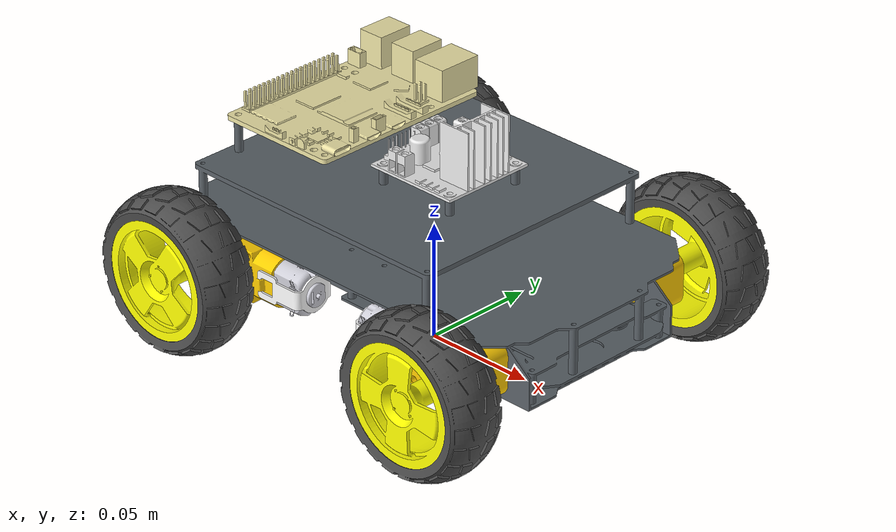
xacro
<?xml version="1.0" ?>

<robot name="carpet_rover" xmlns:xacro="http://www.ros.org/wiki/xacro">

    <xacro:include filename="xacro_properties/xacro_properties.xacro" />
    <xacro:include filename="modules/carpet_rover.xacro" />
    <xacro:include filename="gazebo_tags/gazebo_plugins.xacro" />
    <xacro:include filename="gazebo_tags/gazebo_properties.xacro" />

</robot>

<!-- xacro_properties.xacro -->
<robot xmlns:xacro="http://www.ros.org/wiki/xacro">

  <xacro:property name="package_name" value="carpet_rover_description" />
  <xacro:property name="robot_name" value="carpet_rover" />

</robot>

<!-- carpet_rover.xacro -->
<!-- Generated using onshape-to-robot -->
<!-- Onshape document_id - 37ed7333b50d007c975d9fec -->

<robot xmlns:xacro="http://www.ros.org/wiki/xacro">

  <!-- Link for the world (standard practice for Gazebo only if you have a robot which is FIXED to the ground) -->

  <!-- Use this instead when doing mobile robots!-->
  <link name="base_footprint"/>

  <joint name="base_joint" type="fixed">
      <parent link="base_footprint" />
      <child link="chassis_link" />
      <origin xyz="0 0 0.0275" rpy="0 0 0" />
  </joint>

  <!-- Link chassis_link -->
  <link name="chassis_link">
    <inertial>
      <origin xyz="-0.00393243 0.000523012 0.0166997" rpy="0 0 0"/>
      <mass value="0.519517"/>
      <inertia ixx="0.00106248" ixy="1.05589e-05" ixz="7.56655e-05" iyy="0.00124425" iyz="-1.38092e-05" izz="0.00187327"/>
    </inertial>
    <!--Added in a simple mesh for collision for entire chassis assembly-->
    <collision>
      <origin xyz="0 0 0" rpy="0 0 0"/>
      <geometry>
        <mesh filename="package://${package_name}/assets/chassis_collision.stl"/>
      </geometry>
    </collision>
    <!-- Part raspi5 -->
    <visual>
      <origin xyz="-0.0455 -2.77556e-17 0.058" rpy="0 -0 1.5708"/>
      <geometry>
        <mesh filename="package://${package_name}/assets/raspi5.stl"/>
      </geometry>
      <material name="raspi5_material">
        <color rgba="0.921569 0.882353 0.643137 1"/>
      </material>
    </visual>
    <!-- Part robotchassis -->
    <visual>
      <origin xyz="0 1.26293e-18 0" rpy="0 -0 3.14159"/>
      <geometry>
        <mesh filename="package://${package_name}/assets/robotchassis.stl"/>
      </geometry>
      <material name="robotchassis_material">
        <color rgba="0.34902 0.376471 0.4 1"/>
      </material>
    </visual>
    <!-- Part l298n -->
    <visual>
      <origin xyz="0.0296 0.0215 0.05125" rpy="1.5708 -5.77779e-34 3.14159"/>
      <geometry>
        <mesh filename="package://${package_name}/assets/l298n.stl"/>
      </geometry>
      <material name="l298n_material">
        <color rgba="0.917647 0.917647 0.917647 1"/>
      </material>
    </visual>
    <!-- Part dcmotor_motor -->
    <visual>
      <origin xyz="0.00712895 0.0243036 0.0183344" rpy="1.13798e-15 1.5708 0"/>
      <geometry>
        <mesh filename="package://${package_name}/assets/dcmotor_motor.stl"/>
      </geometry>
      <material name="dcmotor_motor_material">
        <color rgba="0.803922 0.803922 0.839216 1"/>
      </material>
    </visual>
    <!-- Part dcmotor_belt -->
    <visual>
      <origin xyz="0.00843232 0.0243036 0.0183344" rpy="1.26648e-15 1.5708 0"/>
      <geometry>
        <mesh filename="package://${package_name}/assets/dcmotor_belt.stl"/>
      </geometry>
      <material name="dcmotor_belt_material">
        <color rgba="1 1 1 1"/>
      </material>
    </visual>
    <!-- Part dcmotor_body -->
    <visual>
      <origin xyz="0.00828145 0.0243036 0.0180594" rpy="1.13798e-15 1.5708 0"/>
      <geometry>
        <mesh filename="package://${package_name}/assets/dcmotor_body.stl"/>
      </geometry>
      <material name="dcmotor_body_material">
        <color rgba="1 0.8 0 1"/>
      </material>
    </visual>
    <!-- Part dcmotor_motor_2 -->
    <visual>
      <origin xyz="0.00712895 -0.0243036 -0.00833437" rpy="3.14159 -1.5708 0"/>
      <geometry>
        <mesh filename="package://${package_name}/assets/dcmotor_motor.stl"/>
      </geometry>
      <material name="dcmotor_motor_2_material">
        <color rgba="0.803922 0.803922 0.839216 1"/>
      </material>
    </visual>
    <!-- Part dcmotor_belt_2 -->
    <visual>
      <origin xyz="0.00843232 -0.0243036 -0.00833437" rpy="3.14159 -1.5708 0"/>
      <geometry>
        <mesh filename="package://${package_name}/assets/dcmotor_belt.stl"/>
      </geometry>
      <material name="dcmotor_belt_2_material">
        <color rgba="1 1 1 1"/>
      </material>
    </visual>
    <!-- Part dcmotor_body_2 -->
    <visual>
      <origin xyz="0.00828145 -0.0243036 -0.00805937" rpy="3.14159 -1.5708 0"/>
      <geometry>
        <mesh filename="package://${package_name}/assets/dcmotor_body.stl"/>
      </geometry>
      <material name="dcmotor_body_2_material">
        <color rgba="1 0.8 0 1"/>
      </material>
    </visual>
    <!-- Part dcmotor_motor_3 -->
    <visual>
      <origin xyz="-0.00712895 0.0243036 -0.00833437" rpy="-0 -1.5708 0"/>
      <geometry>
        <mesh filename="package://${package_name}/assets/dcmotor_motor.stl"/>
      </geometry>
      <material name="dcmotor_motor_3_material">
        <color rgba="0.803922 0.803922 0.839216 1"/>
      </material>
    </visual>
    <!-- Part dcmotor_belt_3 -->
    <visual>
      <origin xyz="-0.00843232 0.0243036 -0.00833437" rpy="1.28498e-16 -1.5708 0"/>
      <geometry>
        <mesh filename="package://${package_name}/assets/dcmotor_belt.stl"/>
      </geometry>
      <material name="dcmotor_belt_3_material">
        <color rgba="1 1 1 1"/>
      </material>
    </visual>
    <!-- Part dcmotor_body_3 -->
    <visual>
      <origin xyz="-0.00828145 0.0243036 -0.00805937" rpy="-1.13798e-15 -1.5708 0"/>
      <geometry>
        <mesh filename="package://${package_name}/assets/dcmotor_body.stl"/>
      </geometry>
      <material name="dcmotor_body_3_material">
        <color rgba="1 0.8 0 1"/>
      </material>
    </visual>
    <!-- Part dcmotor_motor_4 -->
    <visual>
      <origin xyz="-0.00712895 -0.0243036 0.0183344" rpy="-3.14159 1.5708 0"/>
      <geometry>
        <mesh filename="package://${package_name}/assets/dcmotor_motor.stl"/>
      </geometry>
      <material name="dcmotor_motor_4_material">
        <color rgba="0.803922 0.803922 0.839216 1"/>
      </material>
    </visual>
    <!-- Part dcmotor_belt_4 -->
    <visual>
      <origin xyz="-0.00843232 -0.0243036 0.0183344" rpy="-3.14159 1.5708 0"/>
      <geometry>
        <mesh filename="package://${package_name}/assets/dcmotor_belt.stl"/>
      </geometry>
      <material name="dcmotor_belt_4_material">
        <color rgba="1 1 1 1"/>
      </material>
    </visual>
    <!-- Part dcmotor_body_4 -->
    <visual>
      <origin xyz="-0.00828145 -0.0243036 0.0180594" rpy="-3.14159 1.5708 0"/>
      <geometry>
        <mesh filename="package://${package_name}/assets/dcmotor_body.stl"/>
      </geometry>
      <material name="dcmotor_body_4_material">
        <color rgba="1 0.8 0 1"/>
      </material>
    </visual>
  </link>

  <!-- Link assembly_wheeltoaxle 1-->
  <link name="rear_right_wheel_link">
    <inertial>
      <origin xyz="5.69962e-07 1.34222e-07 0.0258027" rpy="0 0 0"/>
      <mass value="0.0307299"/>
      <inertia ixx="1.26368e-05" ixy="4.50257e-10" ixz="-1.86533e-10" iyy="1.26367e-05" iyz="-1.62173e-10" izz="1.99729e-05"/>
    </inertial>
    <collision>
      <origin xyz="0 0 0.039" rpy="0 0 0"/>
      <geometry>
        <mesh filename="package://${package_name}/assets/wheel_collision.stl"/>
      </geometry>
    </collision>
    <!-- Part dcmotor_axle -->
    <visual>
      <origin xyz="-0.0130594 -0.0592186 0.0251264" rpy="-1.5708 -5.28658e-33 -1.28245e-17"/>
      <geometry>
        <mesh filename="package://${package_name}/assets/dcmotor_axle.stl"/>
      </geometry>
      <material name="dcmotor_axle_material">
        <color rgba="1 1 1 1"/>
      </material>
    </visual>
    <!-- Part tyre -->
    <visual>
      <origin xyz="0.032165 0.0313583 0.0494434" rpy="-3.14159 1.5708 0"/>
      <geometry>
        <mesh filename="package://${package_name}/assets/tyre.stl"/>
      </geometry>
      <material name="tyre_material">
        <color rgba="0.301961 0.301961 0.301961 1"/>
      </material>
    </visual>
    <!-- Part wheel -->
    <visual>
      <origin xyz="0.032165 0.0313583 0.0494334" rpy="-3.14159 1.5708 0"/>
      <geometry>
        <mesh filename="package://${package_name}/assets/wheel.stl"/>
      </geometry>
      <material name="wheel_material">
        <color rgba="1 1 0 1"/>
      </material>
    </visual>
  </link>
  <!-- Joint from assembly_fixedpartstochassis to assembly_wheeltoaxle -->
  <joint name="RearRightWheel" type="continuous">
    <origin xyz="-0.0675 -0.04943 0.005" rpy="1.5708 1.46331 -1.37841e-15"/>
    <parent link="chassis_link"/>
    <child link="rear_right_wheel_link"/>
    <axis xyz="0 0 -1"/>  <!--Note right wheels have z-axis the opposite to left wheels because on same axis but flipped round-->
    <limit effort="100" velocity="100"/>
  </joint>

  <!-- Link front_right_wheel_link -->
  <link name="front_right_wheel_link">
    <inertial>
      <origin xyz="5.69962e-07 1.34222e-07 0.0258027" rpy="0 0 0"/>
      <mass value="0.0307299"/>
      <inertia ixx="1.26368e-05" ixy="4.50257e-10" ixz="-1.86533e-10" iyy="1.26367e-05" iyz="-1.62173e-10" izz="1.99729e-05"/>
    </inertial>
    <collision>
      <origin xyz="0 0 0.039" rpy="0 0 0"/>
      <geometry>
        <mesh filename="package://${package_name}/assets/wheel_collision.stl"/>
      </geometry>
    </collision>
    <!-- Part dcmotor_axle_2 -->
    <visual>
      <origin xyz="-0.0130594 -0.0592186 0.0251264" rpy="-1.5708 6.48832e-32 -3.01686e-17"/>
      <geometry>
        <mesh filename="package://${package_name}/assets/dcmotor_axle.stl"/>
      </geometry>
      <material name="dcmotor_axle_2_material">
        <color rgba="1 1 1 1"/>
      </material>
    </visual>
    <!-- Part tyre_2 -->
    <visual>
      <origin xyz="0.032165 0.0313583 0.0494434" rpy="-3.14159 1.5708 0"/>
      <geometry>
        <mesh filename="package://${package_name}/assets/tyre.stl"/>
      </geometry>
      <material name="tyre_2_material">
        <color rgba="0.301961 0.301961 0.301961 1"/>
      </material>
    </visual>
    <!-- Part wheel_2 -->
    <visual>
      <origin xyz="0.032165 0.0313583 0.0494334" rpy="-3.14159 1.5708 0"/>
      <geometry>
        <mesh filename="package://${package_name}/assets/wheel.stl"/>
      </geometry>
      <material name="wheel_2_material">
        <color rgba="1 1 0 1"/>
      </material>
    </visual>
  </link>
  <!-- Joint from assembly_fixedpartstochassis to assembly_wheeltoaxle_2 -->
  <joint name="FrontRightWheel" type="continuous">
    <origin xyz="0.0675 -0.04943 0.005" rpy="1.5708 0.818287 -1.37186e-15"/>
    <parent link="chassis_link"/>
    <child link="front_right_wheel_link"/>
    <axis xyz="0 0 -1"/> <!--Note right wheels have z-axis the opposite to left wheels because on same axis but flipped round-->
    <limit effort="100" velocity="100"/>
  </joint>

  <!-- Link front_left_wheel_link -->
  <link name="front_left_wheel_link">
    <inertial>
      <origin xyz="5.69962e-07 1.34222e-07 0.0258027" rpy="0 0 0"/>
      <mass value="0.0307299"/>
      <inertia ixx="1.26368e-05" ixy="4.50257e-10" ixz="-1.86533e-10" iyy="1.26367e-05" iyz="-1.62173e-10" izz="1.99729e-05"/>
    </inertial>
    <collision>
      <origin xyz="0 0 0.039" rpy="0 0 0"/>
      <geometry>
        <mesh filename="package://${package_name}/assets/wheel_collision.stl"/>
      </geometry>
    </collision>
    <!-- Part dcmotor_axle_3 -->
    <visual>
      <origin xyz="-0.0130594 -0.0592186 0.0251264" rpy="-1.5708 8.78702e-32 -2.07236e-17"/>
      <geometry>
        <mesh filename="package://${package_name}/assets/dcmotor_axle.stl"/>
      </geometry>
      <material name="dcmotor_axle_3_material">
        <color rgba="1 1 1 1"/>
      </material>
    </visual>
    <!-- Part tyre_3 -->
    <visual>
      <origin xyz="0.032165 0.0313583 0.0494434" rpy="-3.14159 1.5708 0"/>
      <geometry>
        <mesh filename="package://${package_name}/assets/tyre.stl"/>
      </geometry>
      <material name="tyre_3_material">
        <color rgba="0.301961 0.301961 0.301961 1"/>
      </material>
    </visual>
    <!-- Part wheel_3 -->
    <visual>
      <origin xyz="0.032165 0.0313583 0.0494334" rpy="-3.14159 1.5708 0"/>
      <geometry>
        <mesh filename="package://${package_name}/assets/wheel.stl"/>
      </geometry>
      <material name="wheel_3_material">
        <color rgba="1 1 0 1"/>
      </material>
    </visual>
  </link>
  <!-- Joint from assembly_fixedpartstochassis to assembly_wheeltoaxle_3 -->
  <joint name="FrontLeftWheel" type="continuous">
    <origin xyz="0.0675 0.04943 0.005" rpy="1.5708 0.434588 3.14159"/>
    <parent link="chassis_link"/>
    <child link="front_left_wheel_link"/>
    <axis xyz="0 0 1"/>
    <limit effort="100" velocity="100"/>
  </joint>

  <!-- Link rear_left_wheel_link -->
  <link name="rear_left_wheel_link">
    <inertial>
      <origin xyz="5.69962e-07 1.34222e-07 0.0258027" rpy="0 0 0"/>
      <mass value="0.0307299"/>
      <inertia ixx="1.26368e-05" ixy="4.50257e-10" ixz="-1.86533e-10" iyy="1.26367e-05" iyz="-1.62173e-10" izz="1.99729e-05"/>
    </inertial>
    <collision>
      <origin xyz="0 0 0.039" rpy="0 0 0"/>
      <geometry>
        <mesh filename="package://${package_name}/assets/wheel_collision.stl"/>
      </geometry>
    </collision>
    <!-- Part dcmotor_axle_4 -->
    <visual>
      <origin xyz="-0.0130594 -0.0592186 0.0251264" rpy="-1.5708 -1.43421e-33 2.55822e-17"/>
      <geometry>
        <mesh filename="package://${package_name}/assets/dcmotor_axle.stl"/>
      </geometry>
      <material name="dcmotor_axle_4_material">
        <color rgba="1 1 1 1"/>
      </material>
    </visual>
    <!-- Part tyre_4 -->
    <visual>
      <origin xyz="0.032165 0.0313583 0.0494434" rpy="-3.14159 1.5708 0"/>
      <geometry>
        <mesh filename="package://${package_name}/assets/tyre.stl"/>
      </geometry>
      <material name="tyre_4_material">
        <color rgba="0.301961 0.301961 0.301961 1"/>
      </material>
    </visual>
    <!-- Part wheel_4 -->
    <visual>
      <origin xyz="0.032165 0.0313583 0.0494334" rpy="-3.14159 1.5708 0"/>
      <geometry>
        <mesh filename="package://${package_name}/assets/wheel.stl"/>
      </geometry>
      <material name="wheel_4_material">
        <color rgba="1 1 0 1"/>
      </material>
    </visual>
  </link>
  <!-- Joint from assembly_fixedpartstochassis to assembly_wheeltoaxle_4 -->
  <joint name="RearLeftWheel" type="continuous">
    <origin xyz="-0.0675 0.04943 0.005" rpy="1.5708 -1.298 3.14159"/>
    <parent link="chassis_link"/>
    <child link="rear_left_wheel_link"/>
    <axis xyz="0 0 1"/>
    <limit effort="100" velocity="100"/>
  </joint>

</robot>
